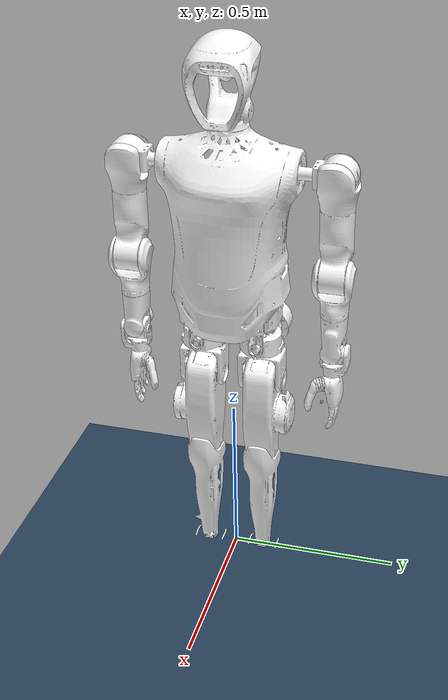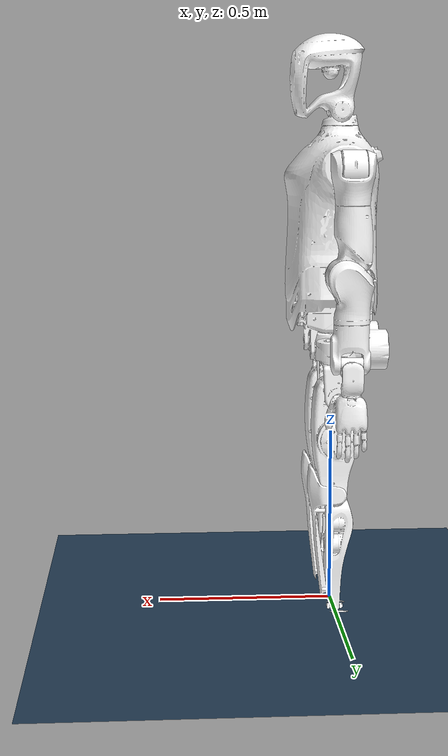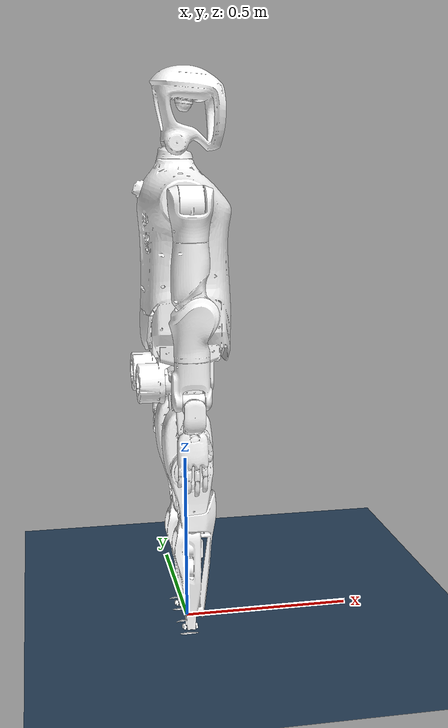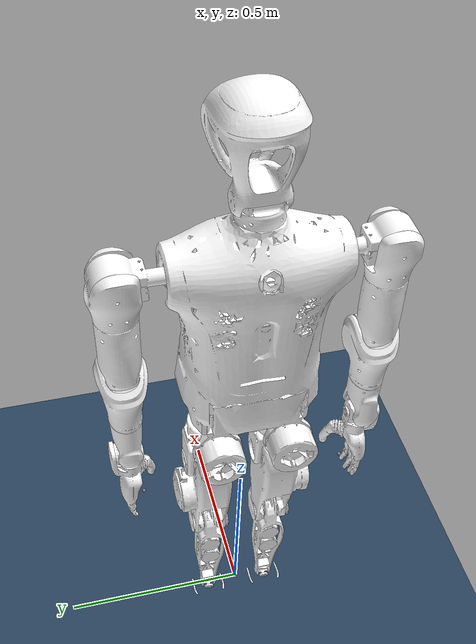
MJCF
<mujoco model="kuavo scene">
  <include file="biped_s46.xml"/>

  <statistic center="0 0 1" extent="1.8"/>

  <visual>
    <headlight diffuse="0.6 0.6 0.6" ambient="0.3 0.3 0.3" specular="0 0 0"/>
    <rgba haze="0.15 0.25 0.35 1"/>
    <global azimuth="160" elevation="-20"/>
  </visual>

  <asset>
    <texture type="skybox" builtin="gradient" rgb1="0.3 0.5 0.7" rgb2="0 0 0" width="512" height="3072"/>
    <texture type="2d" name="groundplane" builtin="checker" mark="edge" rgb1="0.2 0.3 0.4" rgb2="0.1 0.2 0.3"
      markrgb="0.8 0.8 0.8" width="300" height="300"/>
    <material name="groundplane" texture="groundplane" texuniform="true" texrepeat="5 5" reflectance="0.2"/>
  </asset>

  <worldbody>
    <light pos="0 0 3.5" dir="0 0 -1" directional="true"/>
    <geom name="floor" size="0 0 0.05" type="plane" material="groundplane"/>
  </worldbody>

  <keyframe>
    <key name="home"
      qpos="
    0 0 0.98
    1 0 0 0
    0 0 0 0 0 0
    0 0 0 0 0 0
    0 0 0 0 0 0 0
    0 0 0 0 0 0 0
    0 0"/>
  </keyframe>

</mujoco>

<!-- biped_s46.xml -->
<mujoco model="biped_s46">
  <compiler angle="radian" meshdir="../meshes/" />
  <size njmax="500" nconmax="100" />
  <asset>
    <mesh name="torso" file="torso.STL" />
    <mesh name="l_leg_roll" file="l_leg_roll.STL" />
    <mesh name="l_leg_yaw" file="l_leg_yaw.STL" />
    <mesh name="l_leg_pitch" file="l_leg_pitch.STL" />
    <mesh name="l_knee" file="l_knee.STL" />
    <mesh name="l_foot_pitch" file="l_foot_pitch.STL" />
    <mesh name="l_foot_roll" file="l_foot_roll.STL" />
    <mesh name="r_leg_roll" file="r_leg_roll.STL" />
    <mesh name="r_leg_yaw" file="r_leg_yaw.STL" />
    <mesh name="r_leg_pitch" file="r_leg_pitch.STL" />
    <mesh name="r_knee" file="r_knee.STL" />
    <mesh name="r_foot_pitch" file="r_foot_pitch.STL" />
    <mesh name="r_foot_roll" file="r_foot_roll.STL" />
    <mesh name="l_arm_pitch" file="l_arm_pitch.STL" />
    <mesh name="l_arm_roll" file="l_arm_roll.STL" />
    <mesh name="l_arm_yaw" file="l_arm_yaw.STL" />
    <mesh name="l_forearm" file="l_forearm.STL" />
    <mesh name="l_hand_yaw" file="l_hand_yaw.STL" />
    <mesh name="l_hand_roll" file="l_hand_roll.STL" />
    <mesh name="l_hand_pitch" file="l_hand_pitch.STL" />
    <mesh name="r_arm_pitch" file="r_arm_pitch.STL" />
    <mesh name="r_arm_roll" file="r_arm_roll.STL" />
    <mesh name="r_arm_yaw" file="r_arm_yaw.STL" />
    <mesh name="r_forearm" file="r_forearm.STL" />
    <mesh name="r_hand_yaw" file="r_hand_yaw.STL" />
    <mesh name="r_hand_roll" file="r_hand_roll.STL" />
    <mesh name="r_hand_pitch" file="r_hand_pitch.STL" />
    <mesh name="head_yaw" file="head_yaw.STL" />
    <mesh name="head_pitch" file="head_pitch.STL" />
    <mesh name="head_camera" file="head_camera.STL" />
  </asset>
  <worldbody>
    <body name="base_link" pos="0 0 0.82">
      <freejoint />
      <site name="imu" pos="0 0 0" />
      <inertial pos="-0.00761 0.00182 0.21995" quat="0.998529 4.54328e-05 0.0542216 0.000512508" mass="26.8133" diaginertia="0.938886 0.825905 0.269012" />
      <geom type="mesh" contype="0" conaffinity="0" group="1" density="0" rgba="1 1 1 1" mesh="torso" />
      <body name="leg_l1_link" pos="-0.0024999 0.087 -0.066">
        <inertial pos="-0.00402302 0.00013568 -0.00908713" quat="-0.00566884 0.723807 0.00605909 0.689952" mass="1.75436" diaginertia="0.00377365 0.00281073 0.002133" />
        <joint name="leg_l1_joint" pos="0 0 0" axis="1 0 0" range="-0.314159 0.663225" actuatorfrcrange="-180 180" damping="0.2" />
        <geom type="mesh" contype="0" conaffinity="0" group="1" density="0" rgba="1 1 1 1" mesh="l_leg_roll" />
        <body name="leg_l2_link">
          <inertial pos="-0.00277949 0.00478016 -0.0778348" quat="0.779415 0.625672 -0.0267531 0.0182007" mass="0.651964" diaginertia="0.00252814 0.00192832 0.0013047" />
          <joint name="leg_l2_joint" pos="0 0 0" axis="0 0 1" range="-0.872665 0.785398" actuatorfrcrange="-100 100" damping="0.2" />
          <geom type="mesh" contype="0" conaffinity="0" group="1" density="0" rgba="1 1 1 1" mesh="l_leg_yaw" />
          <body name="leg_l3_link" pos="0 0 -0.1287">
            <inertial pos="0.00106133 0.00970189 -0.082999" quat="0.747795 0.0205056 -0.0433254 0.662197" mass="4.78669" diaginertia="0.0438713 0.0424814 0.0108916" />
            <joint name="leg_l3_joint" pos="0 0 0" axis="0 1 0" range="-2.00713 1.5708" actuatorfrcrange="-100 100" damping="0.2" />
            <geom type="mesh" contype="0" conaffinity="0" group="1" density="0" rgba="1 1 1 1" mesh="l_leg_pitch" />
            <body name="leg_l4_link" pos="0 0 -0.284">
              <inertial pos="0.00811619 -1.521e-05 -0.110503" quat="0.692694 -0.00356377 -0.00077448 0.721222" mass="1.8783" diaginertia="0.0154377 0.0153452 0.00111621" />
              <joint name="leg_l4_joint" pos="0 0 0" axis="0 1 0" range="0 2.53073" actuatorfrcrange="-180 180" damping="0.2" />
              <geom type="mesh" contype="0" conaffinity="0" group="1" density="0" rgba="1 1 1 1" mesh="l_knee" />
              <body name="leg_l5_link" pos="0 0 -0.346">
                <inertial pos="0 0 0" quat="0.5 0.5 -0.5 0.5" mass="0.0719352" diaginertia="1.218e-05 6.92e-06 6.92e-06" />
                <joint name="leg_l5_joint" pos="0 0 0" axis="0 1 0" range="-0.872665 0.349066" actuatorfrcrange="-36 36" damping="0.2" />
                <geom type="mesh" contype="0" conaffinity="0" group="1" density="0" rgba="1 1 1 1" mesh="l_foot_pitch" />
                <body name="leg_l6_link">
                  <inertial pos="0.0286226 1.67708e-05 -0.0388468" quat="2.33986e-05 0.726543 4.17054e-05 0.687121" mass="0.765024" diaginertia="0.00310035 0.00293209 0.000791096" />
                  <joint name="leg_l6_joint" pos="0 0 0" axis="1 0 0" range="-0.261799 0.261799" actuatorfrcrange="-36 36" damping="0.2" />
                  <geom type="mesh" contype="0" conaffinity="0" group="1" density="0" rgba="1 1 1 1" mesh="l_foot_roll" />
                  <geom size="0.005" pos="0.17475 0.05623 -0.0695" />
                  <geom size="0.005" pos="-0.07838 0.05623 -0.0695" />
                  <geom size="0.005" pos="0.17475 -0.05623 -0.0695" />
                  <geom size="0.005" pos="-0.07838 -0.05623 -0.0695" />
                  <geom size="0.005" pos="0.17475 0 -0.0695" />
                  <geom size="0.005" pos="-0.07838 0 -0.0695" />
                </body>
              </body>
            </body>
          </body>
        </body>
      </body>
      <body name="leg_r1_link" pos="-0.0024999 -0.087 -0.066">
        <inertial pos="-0.004023 -0.00013567 -0.00908714" quat="0.00566884 0.723807 -0.00605909 0.689952" mass="1.75436" diaginertia="0.00377365 0.00281073 0.002133" />
        <joint name="leg_r1_joint" pos="0 0 0" axis="1 0 0" range="-0.663225 0.314159" actuatorfrcrange="-180 180" damping="0.2" />
        <geom type="mesh" contype="0" conaffinity="0" group="1" density="0" rgba="1 1 1 1" mesh="r_leg_roll" />
        <body name="leg_r2_link">
          <inertial pos="-0.00277949 -0.00477985 -0.077836" quat="0.625672 0.779415 -0.0182021 0.0267546" mass="0.651944" diaginertia="0.00252807 0.00192829 0.00130467" />
          <joint name="leg_r2_joint" pos="0 0 0" axis="0 0 1" range="-0.785398 0.872665" actuatorfrcrange="-100 100" damping="0.2" />
          <geom type="mesh" contype="0" conaffinity="0" group="1" density="0" rgba="1 1 1 1" mesh="r_leg_yaw" />
          <body name="leg_r3_link" pos="0 0 -0.1287">
            <inertial pos="0.0010631 -0.00970056 -0.0830053" quat="0.662201 -0.0433265 0.0205153 0.747791" mass="4.78628" diaginertia="0.0438668 0.0424769 0.0108912" />
            <joint name="leg_r3_joint" pos="0 0 0" axis="0 1 0" range="-2.00713 1.5708" actuatorfrcrange="-100 100" damping="0.2" />
            <geom type="mesh" contype="0" conaffinity="0" group="1" density="0" rgba="1 1 1 1" mesh="r_leg_pitch" />
            <body name="leg_r4_link" pos="0 0 -0.284">
              <inertial pos="0.00810188 3.554e-05 -0.110376" quat="0.716783 -0.00073364 -0.00348684 0.697287" mass="1.87881" diaginertia="0.0158285 0.0156955 0.00148831" />
              <joint name="leg_r4_joint" pos="0 0 0" axis="0 1 0" range="0 2.53073" actuatorfrcrange="-180 180" damping="0.2" />
              <geom type="mesh" contype="0" conaffinity="0" group="1" density="0" rgba="1 1 1 1" mesh="r_knee" />
              <body name="leg_r5_link" pos="0 0 -0.346">
                <inertial pos="0 0 0" quat="0.5 0.5 -0.5 0.5" mass="0.0719352" diaginertia="1.218e-05 6.92e-06 6.92e-06" />
                <joint name="leg_r5_joint" pos="0 0 0" axis="0 1 0" range="-0.872665 0.349066" actuatorfrcrange="-36 36" damping="0.2" />
                <geom type="mesh" contype="0" conaffinity="0" group="1" density="0" rgba="1 1 1 1" mesh="r_foot_pitch" />
                <body name="leg_r6_link">
                  <inertial pos="0.0286226 1.67708e-05 -0.0388468" quat="2.33986e-05 0.726543 4.17054e-05 0.687121" mass="0.765024" diaginertia="0.00310035 0.00293209 0.000791096" />
                  <joint name="leg_r6_joint" pos="0 0 0" axis="1 0 0" range="-0.261799 0.261799" actuatorfrcrange="-36 36" damping="0.2" />
                  <geom type="mesh" contype="0" conaffinity="0" group="1" density="0" rgba="1 1 1 1" mesh="r_foot_roll" />
                  <geom size="0.005" pos="0.17475 0.05623 -0.0695" />
                  <geom size="0.005" pos="-0.07838 0.05623 -0.0695" />
                  <geom size="0.005" pos="0.17475 -0.05623 -0.0695" />
                  <geom size="0.005" pos="-0.07838 -0.05623 -0.0695" />
                  <geom size="0.005" pos="0.17475 0 -0.0695" />
                  <geom size="0.005" pos="-0.07838 0 -0.0695" />
                </body>
              </body>
            </body>
          </body>
        </body>
      </body>
      <body name="zarm_l1_link" pos="-0.0174999 0.2927 0.445">
        <inertial pos="-0.00083 -0.02218 0.00035" quat="0.507855 0.504005 -0.503768 0.484025" mass="0.962" diaginertia="0.00227032 0.0022507 0.000988974" />
        <joint name="zarm_l1_joint" pos="0 0 0" axis="0 1 0" range="-3.14159 1.5708" actuatorfrcrange="-100 100" damping="0.2" />
        <geom type="mesh" contype="0" conaffinity="0" group="1" density="0" rgba="1 1 1 1" mesh="l_arm_pitch" />
        <body name="zarm_l2_link">
          <inertial pos="-0.00791 0 -0.04655" quat="0.705843 -0.0422654 -0.0422654 0.705843" mass="0.57" diaginertia="0.00211 0.00163601 0.00121399" />
          <joint name="zarm_l2_joint" pos="0 0 0" axis="1 0 0" range="-0.349066 2.0944" actuatorfrcrange="-50 50" damping="0.2" />
          <geom type="mesh" contype="0" conaffinity="0" group="1" density="0" rgba="1 1 1 1" mesh="l_arm_roll" />
          <body name="zarm_l3_link">
            <inertial pos="0.00628 0.00107 -0.20878" quat="0.46857 -0.0547044 -0.0420079 0.88073" mass="1.65" diaginertia="0.00829713 0.00825256 0.00194031" />
            <joint name="zarm_l3_joint" pos="0 0 0" axis="0 0 1" range="-1.5708 1.5708" actuatorfrcrange="-39 39" damping="0.2" />
            <geom type="mesh" contype="0" conaffinity="0" group="1" density="0" rgba="1 1 1 1" mesh="l_arm_yaw" />
            <body name="zarm_l4_link" pos="0.02 0 -0.2837">
              <inertial pos="-0.01611 0.00143 -0.04857" quat="0.99579 0 0.0916646 0" mass="0.429" diaginertia="0.00136857 0.00114 0.000811432" />
              <joint name="zarm_l4_joint" pos="0 0 0" axis="0 1 0" range="-2.61799 0" actuatorfrcrange="-50 50" damping="0.2" />
              <geom type="mesh" contype="0" conaffinity="0" group="1" density="0" rgba="1 1 1 1" mesh="l_forearm" />
              <body name="zarm_l5_link" pos="-0.02 0 -0.126">
                <inertial pos="-0.00207 0.00018 -0.05079" quat="0.70482 0.0568167 0.0568167 0.70482" mass="0.61" diaginertia="0.00146 0.00107649 0.000823509" />
                <joint name="zarm_l5_joint" pos="0 0 0" axis="0 0 1" range="-1.5708 1.5708" actuatorfrcrange="-12 12" damping="0.2" />
                <geom type="mesh" contype="0" conaffinity="0" group="1" density="0" rgba="1 1 1 1" mesh="l_hand_yaw" />
                <body name="zarm_l6_link" pos="0 0 -0.1075">
                  <inertial pos="-0.00111 0.00335 -0.01335" quat="0 0.707107 0 0.707107" mass="0.331" diaginertia="0.00028 0.00027 0.00022" />
                  <joint name="zarm_l6_joint" pos="0 0 0" axis="1 0 0" range="-1.309 0.698132" actuatorfrcrange="-12 12" damping="0.2" />
                  <geom type="mesh" contype="0" conaffinity="0" group="1" density="0" rgba="1 1 1 1" mesh="l_hand_roll" />
                  <body name="zarm_l7_link" pos="0 0 -0.021">
                    <inertial pos="0.00185848 0.0101072 -0.090505" quat="0.961232 -0.0391052 -0.00682346 0.272869" mass="0.640524" diaginertia="0.000720114 0.00070104 0.000117174" />
                    <joint name="zarm_l7_joint" pos="0 0 0" axis="0 1 0" range="-0.698132 0.698132" actuatorfrcrange="-12 12" damping="0.2" />
                    <geom type="mesh" contype="0" conaffinity="0" group="1" density="0" rgba="1 1 1 1" mesh="l_hand_pitch" />
                    <geom size="0.005" pos="0 -0.03 -0.17" />
                  </body>
                </body>
              </body>
            </body>
          </body>
        </body>
      </body>
      <body name="zarm_r1_link" pos="-0.0174999 -0.2927 0.445">
        <inertial pos="-0.00083 0.02218 0.00035" quat="0.504005 0.507855 -0.484025 0.503768" mass="0.962" diaginertia="0.00227032 0.0022507 0.000988974" />
        <joint name="zarm_r1_joint" pos="0 0 0" axis="0 1 0" range="-3.14159 1.5708" actuatorfrcrange="-100 100" damping="0.2" />
        <geom type="mesh" contype="0" conaffinity="0" group="1" density="0" rgba="1 1 1 1" mesh="r_arm_pitch" />
        <body name="zarm_r2_link">
          <inertial pos="-0.00791 0 -0.04655" quat="0.705843 -0.0422654 -0.0422654 0.705843" mass="0.57" diaginertia="0.00211 0.00163601 0.00121399" />
          <joint name="zarm_r2_joint" pos="0 0 0" axis="1 0 0" range="-2.0944 0.349066" actuatorfrcrange="-50 50" damping="0.2" />
          <geom type="mesh" contype="0" conaffinity="0" group="1" density="0" rgba="1 1 1 1" mesh="r_arm_roll" />
          <body name="zarm_r3_link">
            <inertial pos="0.00628 -0.00107 -0.20878" quat="0.88073 -0.0420079 -0.0547044 0.46857" mass="1.65" diaginertia="0.00829713 0.00825256 0.00194031" />
            <joint name="zarm_r3_joint" pos="0 0 0" axis="0 0 1" range="-1.5708 1.5708" actuatorfrcrange="-39 39" damping="0.2" />
            <geom type="mesh" contype="0" conaffinity="0" group="1" density="0" rgba="1 1 1 1" mesh="r_arm_yaw" />
            <body name="zarm_r4_link" pos="0.02 0 -0.2837">
              <inertial pos="-0.01611 -0.00143 -0.04857" quat="0.99579 0 0.0916646 0" mass="0.429" diaginertia="0.00136857 0.00114 0.000811432" />
              <joint name="zarm_r4_joint" pos="0 0 0" axis="0 1 0" range="-2.61799 0" actuatorfrcrange="-50 50" damping="0.2" />
              <geom type="mesh" contype="0" conaffinity="0" group="1" density="0" rgba="1 1 1 1" mesh="r_forearm" />
              <body name="zarm_r5_link" pos="-0.02 0 -0.126">
                <inertial pos="-0.00207 -0.00018 -0.05079" quat="0.70482 0.0568167 0.0568167 0.70482" mass="0.61" diaginertia="0.00146 0.00107649 0.000823509" />
                <joint name="zarm_r5_joint" pos="0 0 0" axis="0 0 1" range="-1.5708 1.5708" actuatorfrcrange="-12 12" damping="0.2" />
                <geom type="mesh" contype="0" conaffinity="0" group="1" density="0" rgba="1 1 1 1" mesh="r_hand_yaw" />
                <body name="zarm_r6_link" pos="0 0 -0.1075">
                  <inertial pos="-0.00111 -0.00335 -0.01335" quat="0 0.707107 0 0.707107" mass="0.331" diaginertia="0.00028 0.00027 0.00022" />
                  <joint name="zarm_r6_joint" pos="0 0 0" axis="1 0 0" range="-0.698132 1.309" actuatorfrcrange="-12 12" damping="0.2" />
                  <geom type="mesh" contype="0" conaffinity="0" group="1" density="0" rgba="1 1 1 1" mesh="r_hand_roll" />
                  <body name="zarm_r7_link" pos="0 0 -0.021">
                    <inertial pos="0.00185848 -0.0101072 -0.090505" quat="0.956166 0.0488773 -0.0039771 -0.288691" mass="0.640524" diaginertia="0.000700271 0.000682658 0.000115399" />
                    <joint name="zarm_r7_joint" pos="0 0 0" axis="0 1 0" range="-0.698132 0.698132" actuatorfrcrange="-12 12" damping="0.2" />
                    <geom type="mesh" contype="0" conaffinity="0" group="1" density="0" rgba="1 1 1 1" mesh="r_hand_pitch" />
                    <geom size="0.005" pos="0 0.03 -0.17" />
                  </body>
                </body>
              </body>
            </body>
          </body>
        </body>
      </body>
      <body name="zhead_1_link" pos="-0.0184999 0 0.6014">
        <inertial pos="-0.00031 0.00037 -0.01205" mass="0.35" diaginertia="7e-05 5e-05 5e-05" />
        <joint name="zhead_1_joint" pos="0 0 0" axis="0 0 1" range="-1.5708 1.5708" actuatorfrcrange="-1.5 1.5" damping="0.2" />
        <geom type="mesh" contype="0" conaffinity="0" group="1" density="0" rgba="1 1 1 1" mesh="head_yaw" />
        <body name="zhead_2_link">
          <inertial pos="0.0268676 0.000378234 0.0745327" quat="0.443488 -0.113722 -0.0346749 0.88836" mass="0.835026" diaginertia="0.0045993 0.00450499 0.00301055" />
          <joint name="zhead_2_joint" pos="0 0 0" axis="0 1 0" range="-0.523599 0.523599" actuatorfrcrange="-12 12" damping="0.2" />
          <geom type="mesh" contype="0" conaffinity="0" group="1" density="0" rgba="1 1 1 1" mesh="head_pitch" />
          <geom pos="0.117357 0.0176534 0.152372" quat="0.970296 0 0.241922 0" type="mesh" contype="0" conaffinity="0" group="1" density="0" rgba="1 1 1 1" mesh="head_camera" />
        </body>
      </body>
    </body>
  </worldbody>
  <actuator>
    <motor gear="1" joint="leg_l1_joint" name="leg_l1_joint_motor" ctrllimited="true" ctrlrange="-180 180" />
    <motor gear="1" joint="leg_l2_joint" name="leg_l2_joint_motor" ctrllimited="true" ctrlrange="-100 100" />
    <motor gear="1" joint="leg_l3_joint" name="leg_l3_joint_motor" ctrllimited="true" ctrlrange="-100 100" />
    <motor gear="1" joint="leg_l4_joint" name="leg_l4_joint_motor" ctrllimited="true" ctrlrange="-180 180" />
    <motor gear="1" joint="leg_l5_joint" name="leg_l5_joint_motor" ctrllimited="true" ctrlrange="-36 36" />
    <motor gear="1" joint="leg_l6_joint" name="leg_l6_joint_motor" ctrllimited="true" ctrlrange="-36 36" />
    <motor gear="1" joint="leg_r1_joint" name="leg_r1_joint_motor" ctrllimited="true" ctrlrange="-180 180" />
    <motor gear="1" joint="leg_r2_joint" name="leg_r2_joint_motor" ctrllimited="true" ctrlrange="-100 100" />
    <motor gear="1" joint="leg_r3_joint" name="leg_r3_joint_motor" ctrllimited="true" ctrlrange="-100 100" />
    <motor gear="1" joint="leg_r4_joint" name="leg_r4_joint_motor" ctrllimited="true" ctrlrange="-180 180" />
    <motor gear="1" joint="leg_r5_joint" name="leg_r5_joint_motor" ctrllimited="true" ctrlrange="-36 36" />
    <motor gear="1" joint="leg_r6_joint" name="leg_r6_joint_motor" ctrllimited="true" ctrlrange="-36 36" />
    <motor gear="1" joint="zarm_l1_joint" name="zarm_l1_joint_motor" ctrllimited="true" ctrlrange="-100 100" />
    <motor gear="1" joint="zarm_l2_joint" name="zarm_l2_joint_motor" ctrllimited="true" ctrlrange="-50 50" />
    <motor gear="1" joint="zarm_l3_joint" name="zarm_l3_joint_motor" ctrllimited="true" ctrlrange="-39 39" />
    <motor gear="1" joint="zarm_l4_joint" name="zarm_l4_joint_motor" ctrllimited="true" ctrlrange="-50 50" />
    <motor gear="1" joint="zarm_l5_joint" name="zarm_l5_joint_motor" ctrllimited="true" ctrlrange="-12 12" />
    <motor gear="1" joint="zarm_l6_joint" name="zarm_l6_joint_motor" ctrllimited="true" ctrlrange="-12 12" />
    <motor gear="1" joint="zarm_l7_joint" name="zarm_l7_joint_motor" ctrllimited="true" ctrlrange="-12 12" />
    <motor gear="1" joint="zarm_r1_joint" name="zarm_r1_joint_motor" ctrllimited="true" ctrlrange="-100 100" />
    <motor gear="1" joint="zarm_r2_joint" name="zarm_r2_joint_motor" ctrllimited="true" ctrlrange="-50 50" />
    <motor gear="1" joint="zarm_r3_joint" name="zarm_r3_joint_motor" ctrllimited="true" ctrlrange="-39 39" />
    <motor gear="1" joint="zarm_r4_joint" name="zarm_r4_joint_motor" ctrllimited="true" ctrlrange="-50 50" />
    <motor gear="1" joint="zarm_r5_joint" name="zarm_r5_joint_motor" ctrllimited="true" ctrlrange="-12 12" />
    <motor gear="1" joint="zarm_r6_joint" name="zarm_r6_joint_motor" ctrllimited="true" ctrlrange="-12 12" />
    <motor gear="1" joint="zarm_r7_joint" name="zarm_r7_joint_motor" ctrllimited="true" ctrlrange="-12 12" />
    <motor gear="1" joint="zhead_1_joint" name="zhead_1_joint_motor" ctrllimited="true" ctrlrange="-1.5 1.5" />
    <motor gear="1" joint="zhead_2_joint" name="zhead_2_joint_motor" ctrllimited="true" ctrlrange="-12 12" />
  </actuator>
  <sensor>
    <accelerometer name="BodyAcc" site="imu" />
    <velocimeter name="BodyVel" site="imu" />
    <gyro name="BodyGyro" site="imu" />
    <framepos name="BodyPos" objtype="site" objname="imu" />
    <framequat name="BodyQuat" objtype="site" objname="imu" />
    <jointpos name="leg_l1_joint_pos" joint="leg_l1_joint" />
    <jointpos name="leg_l2_joint_pos" joint="leg_l2_joint" />
    <jointpos name="leg_l3_joint_pos" joint="leg_l3_joint" />
    <jointpos name="leg_l4_joint_pos" joint="leg_l4_joint" />
    <jointpos name="leg_l5_joint_pos" joint="leg_l5_joint" />
    <jointpos name="leg_l6_joint_pos" joint="leg_l6_joint" />
    <jointpos name="leg_r1_joint_pos" joint="leg_r1_joint" />
    <jointpos name="leg_r2_joint_pos" joint="leg_r2_joint" />
    <jointpos name="leg_r3_joint_pos" joint="leg_r3_joint" />
    <jointpos name="leg_r4_joint_pos" joint="leg_r4_joint" />
    <jointpos name="leg_r5_joint_pos" joint="leg_r5_joint" />
    <jointpos name="leg_r6_joint_pos" joint="leg_r6_joint" />
    <jointpos name="zarm_l1_joint_pos" joint="zarm_l1_joint" />
    <jointpos name="zarm_l2_joint_pos" joint="zarm_l2_joint" />
    <jointpos name="zarm_l3_joint_pos" joint="zarm_l3_joint" />
    <jointpos name="zarm_l4_joint_pos" joint="zarm_l4_joint" />
    <jointpos name="zarm_l5_joint_pos" joint="zarm_l5_joint" />
    <jointpos name="zarm_l6_joint_pos" joint="zarm_l6_joint" />
    <jointpos name="zarm_l7_joint_pos" joint="zarm_l7_joint" />
    <jointpos name="zarm_r1_joint_pos" joint="zarm_r1_joint" />
    <jointpos name="zarm_r2_joint_pos" joint="zarm_r2_joint" />
    <jointpos name="zarm_r3_joint_pos" joint="zarm_r3_joint" />
    <jointpos name="zarm_r4_joint_pos" joint="zarm_r4_joint" />
    <jointpos name="zarm_r5_joint_pos" joint="zarm_r5_joint" />
    <jointpos name="zarm_r6_joint_pos" joint="zarm_r6_joint" />
    <jointpos name="zarm_r7_joint_pos" joint="zarm_r7_joint" />
    <jointpos name="zhead_1_joint_pos" joint="zhead_1_joint" />
    <jointpos name="zhead_2_joint_pos" joint="zhead_2_joint" />
    <jointvel name="leg_l1_joint_vel" joint="leg_l1_joint" />
    <jointvel name="leg_l2_joint_vel" joint="leg_l2_joint" />
    <jointvel name="leg_l3_joint_vel" joint="leg_l3_joint" />
    <jointvel name="leg_l4_joint_vel" joint="leg_l4_joint" />
    <jointvel name="leg_l5_joint_vel" joint="leg_l5_joint" />
    <jointvel name="leg_l6_joint_vel" joint="leg_l6_joint" />
    <jointvel name="leg_r1_joint_vel" joint="leg_r1_joint" />
    <jointvel name="leg_r2_joint_vel" joint="leg_r2_joint" />
    <jointvel name="leg_r3_joint_vel" joint="leg_r3_joint" />
    <jointvel name="leg_r4_joint_vel" joint="leg_r4_joint" />
    <jointvel name="leg_r5_joint_vel" joint="leg_r5_joint" />
    <jointvel name="leg_r6_joint_vel" joint="leg_r6_joint" />
    <jointvel name="zarm_l1_joint_vel" joint="zarm_l1_joint" />
    <jointvel name="zarm_l2_joint_vel" joint="zarm_l2_joint" />
    <jointvel name="zarm_l3_joint_vel" joint="zarm_l3_joint" />
    <jointvel name="zarm_l4_joint_vel" joint="zarm_l4_joint" />
    <jointvel name="zarm_l5_joint_vel" joint="zarm_l5_joint" />
    <jointvel name="zarm_l6_joint_vel" joint="zarm_l6_joint" />
    <jointvel name="zarm_l7_joint_vel" joint="zarm_l7_joint" />
    <jointvel name="zarm_r1_joint_vel" joint="zarm_r1_joint" />
    <jointvel name="zarm_r2_joint_vel" joint="zarm_r2_joint" />
    <jointvel name="zarm_r3_joint_vel" joint="zarm_r3_joint" />
    <jointvel name="zarm_r4_joint_vel" joint="zarm_r4_joint" />
    <jointvel name="zarm_r5_joint_vel" joint="zarm_r5_joint" />
    <jointvel name="zarm_r6_joint_vel" joint="zarm_r6_joint" />
    <jointvel name="zarm_r7_joint_vel" joint="zarm_r7_joint" />
    <jointvel name="zhead_1_joint_vel" joint="zhead_1_joint" />
    <jointvel name="zhead_2_joint_vel" joint="zhead_2_joint" />
  </sensor>
</mujoco>
